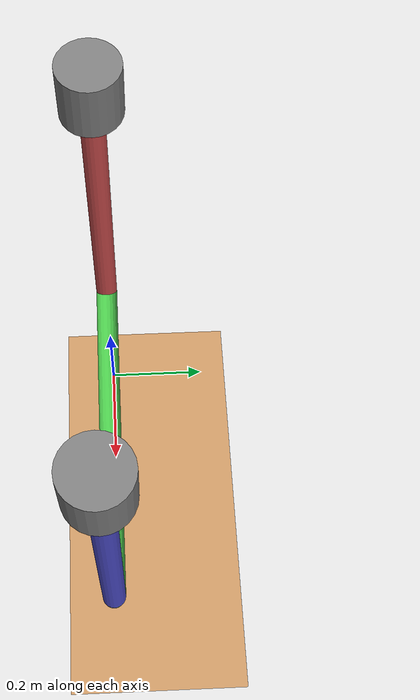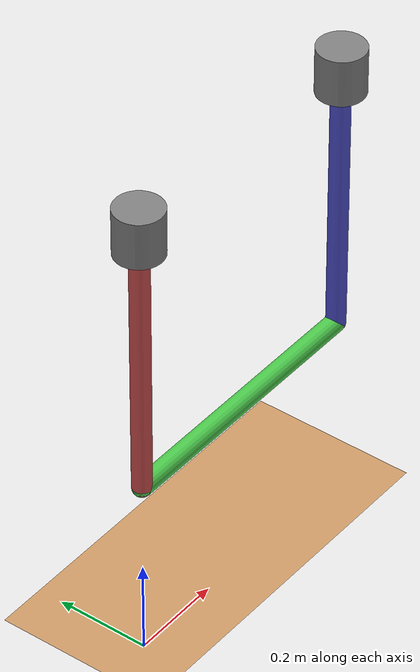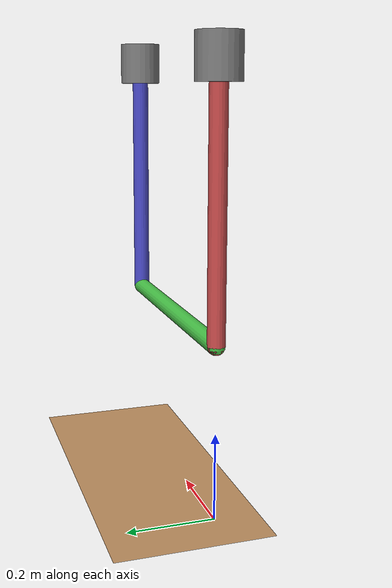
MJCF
<mujoco model="four_bar_linkage">
    <compiler angle="radian"/>

    <default>
        <joint damping="0.1"/>
        <geom type="capsule" size="0.02" rgba=".8 .6 .4 1"/>
    </default>

    <!-- Disable all collisions -->
    <contact>
        <exclude body1="base1" body2="link1"/>
        <exclude body1="base1" body2="link2"/>
        <exclude body1="base2" body2="link3"/>
        <exclude body1="link1" body2="link2"/>
        <exclude body1="link1" body2="link3"/>
        <exclude body1="link2" body2="link3"/>
    </contact>

    <asset>
        <texture type="skybox" builtin="gradient" rgb1="0.3 0.5 0.7" rgb2="0 0 0" width="512" height="3072"/>
        <texture type="2d" name="groundplane" builtin="checker" mark="edge" rgb1="0.2 0.3 0.4" rgb2="0.1 0.2 0.3"
            markrgb="0.8 0.8 0.8" width="300" height="300"/>
        <material name="groundplane" texture="groundplane" texuniform="true" texrepeat="5 5" reflectance="0.2"/>
    </asset>

    <worldbody>
        <light diffuse=".5 .5 .5" pos="0 0 3" dir="0 0 -1"/>
        <geom type="plane" size="5 5 0.1" material="groundplane"/>

        <!-- Two-link pendulum -->
        <body name="base1" pos="0 0 1.0">
            <geom type="cylinder" size="0.05 0.05" rgba="0.5 0.5 0.5 1"/>

            <body name="link1" pos="0 0 0" euler="0 1.5708 0">
                <joint name="joint1" type="hinge" axis="0 1 0"/>
                <geom fromto="0 0 0 0.6 0 0" rgba=".8 .3 .3 1"/>

                <body name="link2" pos="0.6 0 0" euler="0 -1.5708 0">
                    <joint name="joint2" type="hinge" axis="0 1 0"/>
                    <geom fromto="0 0 0 0.6 0 0" rgba=".3 .8 .3 1"/>
                    <site name="endpoint1" pos="0.6 0 0" size="0.02"/>
                </body>
            </body>
        </body>

        <!-- Single-link pendulum -->
        <body name="base2" pos="0.6 0 1.0">
            <geom type="cylinder" size="0.05 0.05" rgba="0.5 0.5 0.5 1"/>

            <body name="link3" pos="0 0 0" euler="0 1.5708 0">
                <joint name="joint3" type="hinge" axis="0 1 0"/>
                <geom fromto="0 0 0 0.6 0 0" rgba=".3 .3 .8 1"/>
                <site name="endpoint2" pos="0.6 0 0" size="0.02"/>
            </body>
        </body>
    </worldbody>

    <equality>
        <!-- Connect the endpoints using connect constraint -->
        <connect body1="link2" body2="link3" anchor="0.6 0 0"/>
    </equality>

    <actuator>
        <motor joint="joint1" name="motor1" gear="1" ctrlrange="-100 100"/>
        <motor joint="joint3" name="motor2" gear="1" ctrlrange="-100 100"/>
    </actuator>

</mujoco>
